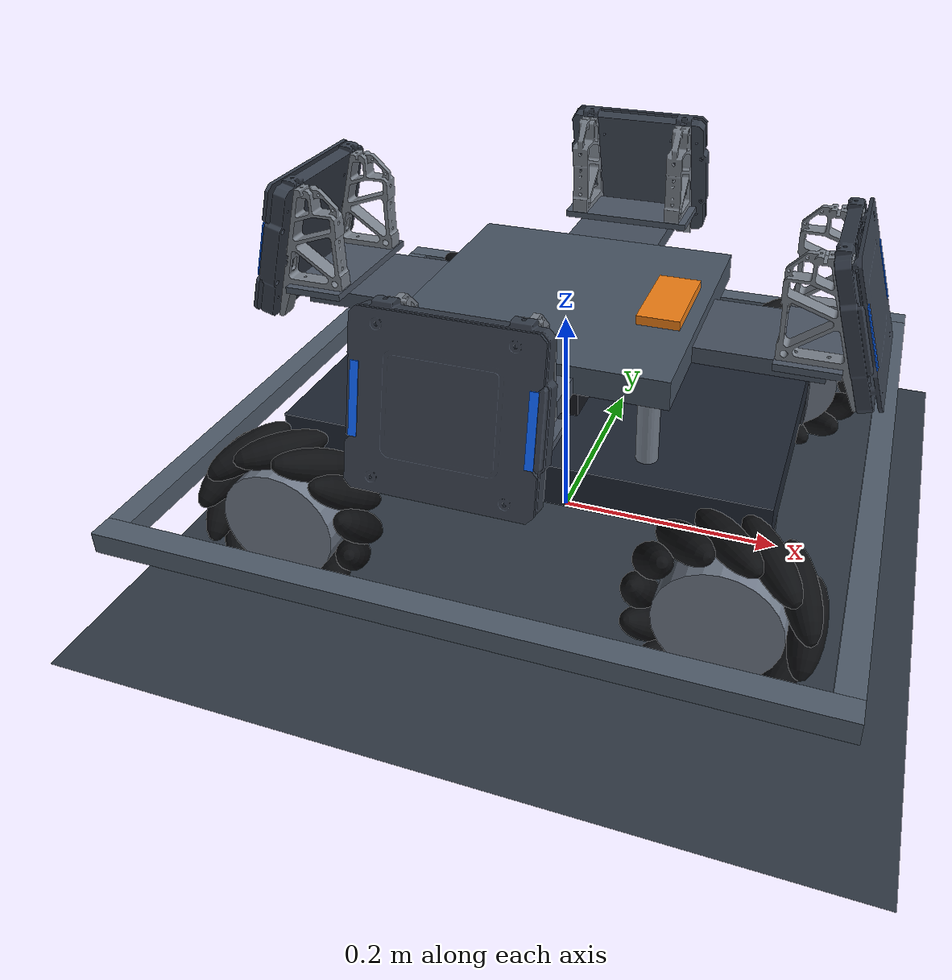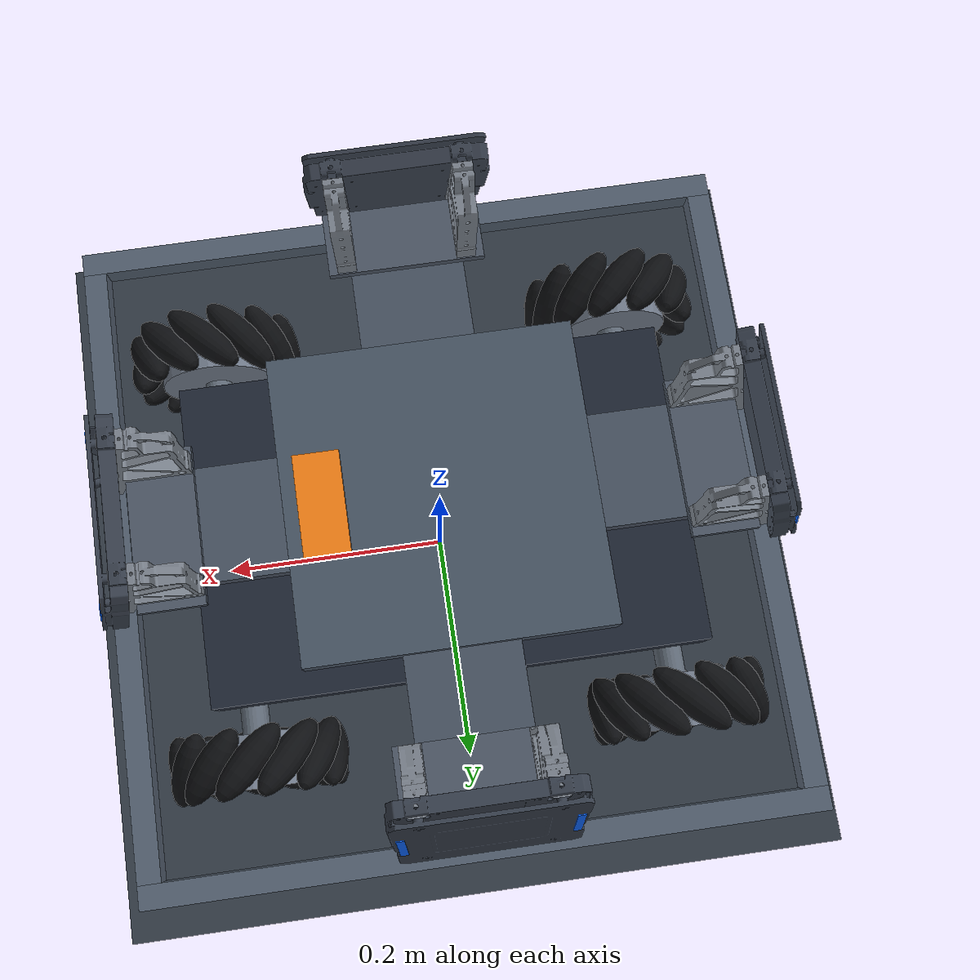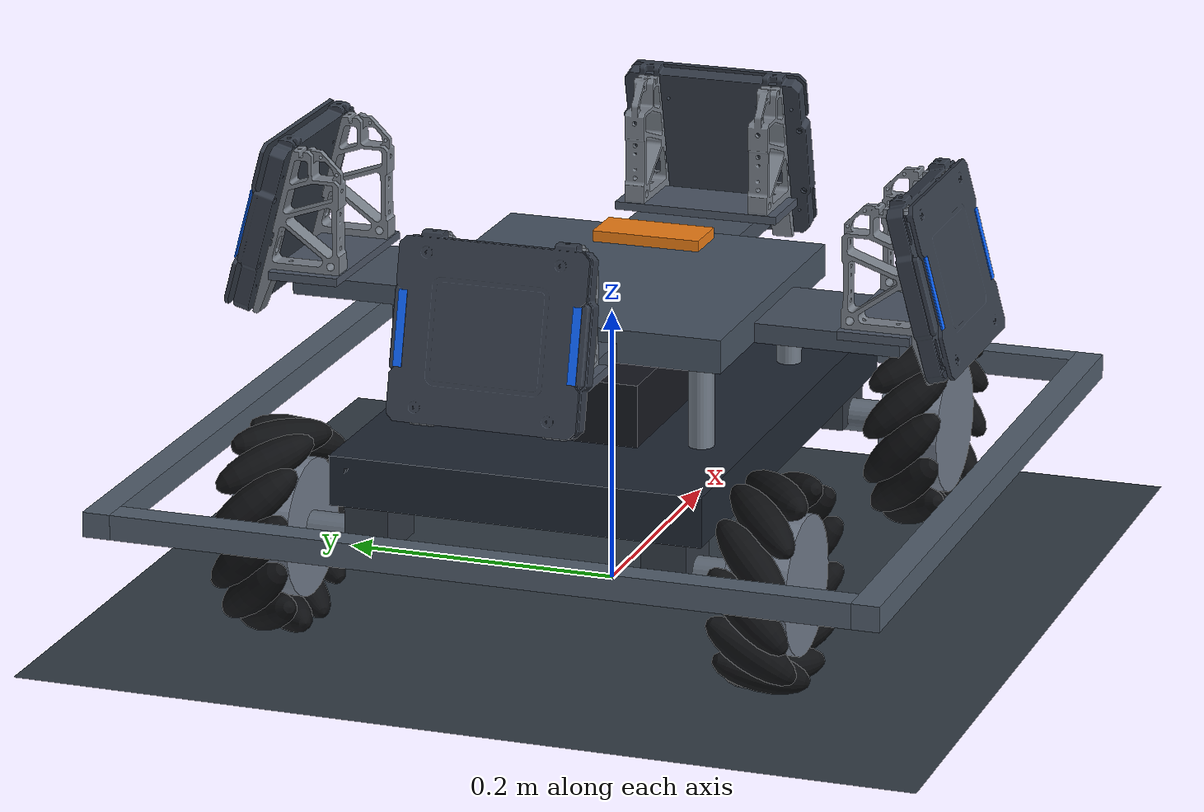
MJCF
<mujoco model="RoboMaster simplified infantry">
  <compiler angle="radian" meshdir="meshes" autolimits="true" />
  <option timestep="0.001" integrator="implicitfast" cone="elliptic" iterations="60" gravity="0 0 -9.81" />
  <default>
    <geom friction="1.0 0.002 0.0001" solref="0.008 1" solimp="0.95 0.99 0.001" condim="4" />
  </default>
  <visual>
    <global offwidth="1280" offheight="960" />
  </visual>
  <asset>
    <mesh name="armor_am02" file="armor_am02.obj" />
    <mesh name="armor_frame_a" file="armor_frame_a.obj" />
    <texture name="tiles" type="2d" builtin="checker" rgb1=".16 .19 .23" rgb2=".23 .27 .31" width="512" height="512" />
    <material name="floor" texture="tiles" texrepeat="12 12" reflectance=".1" />
  </asset>
  <worldbody>
    <light pos="1 -2 3" dir="-0.3 0.3 -1" diffuse=".9 .9 .9" ambient=".35 .35 .35" />
    <light pos="-2 1 2" dir="0 0 -1" diffuse=".5 .5 .5" />
    <geom name="ground" type="plane" size="6 6 .1" material="floor" contype="1" conaffinity="2" />
    <body name="chassis" pos="0 0 .08">
      <freejoint name="root" />
      <geom name="lower_deck" type="box" pos="0 0 .045" size=".205 .135 .018" mass="8" rgba=".12 .15 .2 1" contype="2" conaffinity="1" />
      <geom name="upper_deck" type="box" pos="0 0 .135" size=".12 .12 .012" mass="2" rgba=".28 .33 .39 1" contype="2" conaffinity="1" />
      <geom name="battery" type="box" pos="-.045 0 .085" size=".075 .06 .023" mass="2" rgba=".08 .09 .12 1" contype="0" conaffinity="0" />
      <geom name="front_marker" type="box" pos=".09 0 .151" size=".018 .04 .004" mass=".01" rgba=".95 .5 .08 1" contype="0" conaffinity="0" />
      <geom type="cylinder" pos="-0.1 -0.1 .09" size=".009 .035" mass=".08" rgba=".45 .49 .54 1" contype="0" conaffinity="0" />
      <geom type="cylinder" pos="-0.1 0.1 .09" size=".009 .035" mass=".08" rgba=".45 .49 .54 1" contype="0" conaffinity="0" />
      <geom type="cylinder" pos="0.1 -0.1 .09" size=".009 .035" mass=".08" rgba=".45 .49 .54 1" contype="0" conaffinity="0" />
      <geom type="cylinder" pos="0.1 0.1 .09" size=".009 .035" mass=".08" rgba=".45 .49 .54 1" contype="0" conaffinity="0" />
      <geom name="bumper_0_-1" type="box" pos="-0.275 0 0.022" size="0.01 0.265 0.009" mass=".25" rgba=".32 .37 .43 1" contype="2" conaffinity="1" />
      <geom name="bumper_0_1" type="box" pos="0.275 0 0.022" size="0.01 0.265 0.009" mass=".25" rgba=".32 .37 .43 1" contype="2" conaffinity="1" />
      <geom name="bumper_1_-1" type="box" pos="0 -0.275 0.022" size="0.285 0.01 0.009" mass=".25" rgba=".32 .37 .43 1" contype="2" conaffinity="1" />
      <geom name="bumper_1_1" type="box" pos="0 0.275 0.022" size="0.285 0.01 0.009" mass=".25" rgba=".32 .37 .43 1" contype="2" conaffinity="1" />
      <body name="armor_mount_front" pos="0.245 0.0 .175" euler="0 0 0">
        <body name="armor_front" euler="0 -0.2617993877991494 0">
          <inertial pos="0 0 0" mass=".359" diaginertia=".001 .0005 .0006" />
          <geom type="mesh" mesh="armor_am02" rgba=".21 .24 .29 1" contype="0" conaffinity="0" mass="0" />
          <geom name="armor_collision_front" type="box" size=".0095 .0705 .065" rgba="0 0 0 0" contype="2" conaffinity="1" mass="0" />
          <site name="armor_face_front" pos=".0095 0 0" size=".001" rgba="0 0 0 0" />
          <geom name="light_front_-1" type="box" pos=".0097 -0.062 0" size=".0005 .003 .026" rgba=".05 .4 1 1" contype="0" conaffinity="0" mass="0" />
          <geom name="light_front_1" type="box" pos=".0097 0.062 0" size=".0005 .003 .026" rgba=".05 .4 1 1" contype="0" conaffinity="0" mass="0" />
        </body>
        <geom type="mesh" mesh="armor_frame_a" pos="-.009176295 -0.0475 -.002458781" rgba=".48 .51 .55 1" contype="0" conaffinity="0" mass=".06" />
        <geom type="mesh" mesh="armor_frame_a" pos="-.009176295 0.0475 -.002458781" rgba=".48 .51 .55 1" contype="0" conaffinity="0" mass=".06" />
        <geom type="box" pos="-.09 0 -.045" size=".07 .045 .007" mass=".15" rgba=".28 .32 .38 1" contype="0" conaffinity="0" />
        <geom type="box" pos="-.034 0 -.034868407" size=".026 .062 .003" mass=".15" rgba=".3 .34 .4 1" contype="0" conaffinity="0" />
        <site name="m4_front_-0.044894086_-0.0475" pos="-0.044894086 -0.0475 -.031868407" size=".0021" rgba=".8 .8 .8 1" />
        <site name="m4_front_-0.044894086_0.0475" pos="-0.044894086 0.0475 -.031868407" size=".0021" rgba=".8 .8 .8 1" />
        <site name="m4_front_-0.019894086_-0.0475" pos="-0.019894086 -0.0475 -.031868407" size=".0021" rgba=".8 .8 .8 1" />
        <site name="m4_front_-0.019894086_0.0475" pos="-0.019894086 0.0475 -.031868407" size=".0021" rgba=".8 .8 .8 1" />
      </body>
      <body name="armor_mount_left" pos="1.5001923289555077e-17 0.245 .175" euler="0 0 1.5707963267948966">
        <body name="armor_left" euler="0 -0.2617993877991494 0">
          <inertial pos="0 0 0" mass=".359" diaginertia=".001 .0005 .0006" />
          <geom type="mesh" mesh="armor_am02" rgba=".21 .24 .29 1" contype="0" conaffinity="0" mass="0" />
          <geom name="armor_collision_left" type="box" size=".0095 .0705 .065" rgba="0 0 0 0" contype="2" conaffinity="1" mass="0" />
          <site name="armor_face_left" pos=".0095 0 0" size=".001" rgba="0 0 0 0" />
          <geom name="light_left_-1" type="box" pos=".0097 -0.062 0" size=".0005 .003 .026" rgba=".05 .4 1 1" contype="0" conaffinity="0" mass="0" />
          <geom name="light_left_1" type="box" pos=".0097 0.062 0" size=".0005 .003 .026" rgba=".05 .4 1 1" contype="0" conaffinity="0" mass="0" />
        </body>
        <geom type="mesh" mesh="armor_frame_a" pos="-.009176295 -0.0475 -.002458781" rgba=".48 .51 .55 1" contype="0" conaffinity="0" mass=".06" />
        <geom type="mesh" mesh="armor_frame_a" pos="-.009176295 0.0475 -.002458781" rgba=".48 .51 .55 1" contype="0" conaffinity="0" mass=".06" />
        <geom type="box" pos="-.09 0 -.045" size=".07 .045 .007" mass=".15" rgba=".28 .32 .38 1" contype="0" conaffinity="0" />
        <geom type="box" pos="-.034 0 -.034868407" size=".026 .062 .003" mass=".15" rgba=".3 .34 .4 1" contype="0" conaffinity="0" />
        <site name="m4_left_-0.044894086_-0.0475" pos="-0.044894086 -0.0475 -.031868407" size=".0021" rgba=".8 .8 .8 1" />
        <site name="m4_left_-0.044894086_0.0475" pos="-0.044894086 0.0475 -.031868407" size=".0021" rgba=".8 .8 .8 1" />
        <site name="m4_left_-0.019894086_-0.0475" pos="-0.019894086 -0.0475 -.031868407" size=".0021" rgba=".8 .8 .8 1" />
        <site name="m4_left_-0.019894086_0.0475" pos="-0.019894086 0.0475 -.031868407" size=".0021" rgba=".8 .8 .8 1" />
      </body>
      <body name="armor_mount_rear" pos="-0.245 3.0003846579110155e-17 .175" euler="0 0 3.141592653589793">
        <body name="armor_rear" euler="0 -0.2617993877991494 0">
          <inertial pos="0 0 0" mass=".359" diaginertia=".001 .0005 .0006" />
          <geom type="mesh" mesh="armor_am02" rgba=".21 .24 .29 1" contype="0" conaffinity="0" mass="0" />
          <geom name="armor_collision_rear" type="box" size=".0095 .0705 .065" rgba="0 0 0 0" contype="2" conaffinity="1" mass="0" />
          <site name="armor_face_rear" pos=".0095 0 0" size=".001" rgba="0 0 0 0" />
          <geom name="light_rear_-1" type="box" pos=".0097 -0.062 0" size=".0005 .003 .026" rgba=".05 .4 1 1" contype="0" conaffinity="0" mass="0" />
          <geom name="light_rear_1" type="box" pos=".0097 0.062 0" size=".0005 .003 .026" rgba=".05 .4 1 1" contype="0" conaffinity="0" mass="0" />
        </body>
        <geom type="mesh" mesh="armor_frame_a" pos="-.009176295 -0.0475 -.002458781" rgba=".48 .51 .55 1" contype="0" conaffinity="0" mass=".06" />
        <geom type="mesh" mesh="armor_frame_a" pos="-.009176295 0.0475 -.002458781" rgba=".48 .51 .55 1" contype="0" conaffinity="0" mass=".06" />
        <geom type="box" pos="-.09 0 -.045" size=".07 .045 .007" mass=".15" rgba=".28 .32 .38 1" contype="0" conaffinity="0" />
        <geom type="box" pos="-.034 0 -.034868407" size=".026 .062 .003" mass=".15" rgba=".3 .34 .4 1" contype="0" conaffinity="0" />
        <site name="m4_rear_-0.044894086_-0.0475" pos="-0.044894086 -0.0475 -.031868407" size=".0021" rgba=".8 .8 .8 1" />
        <site name="m4_rear_-0.044894086_0.0475" pos="-0.044894086 0.0475 -.031868407" size=".0021" rgba=".8 .8 .8 1" />
        <site name="m4_rear_-0.019894086_-0.0475" pos="-0.019894086 -0.0475 -.031868407" size=".0021" rgba=".8 .8 .8 1" />
        <site name="m4_rear_-0.019894086_0.0475" pos="-0.019894086 0.0475 -.031868407" size=".0021" rgba=".8 .8 .8 1" />
      </body>
      <body name="armor_mount_right" pos="1.5001923289555077e-17 -0.245 .175" euler="0 0 -1.5707963267948966">
        <body name="armor_right" euler="0 -0.2617993877991494 0">
          <inertial pos="0 0 0" mass=".359" diaginertia=".001 .0005 .0006" />
          <geom type="mesh" mesh="armor_am02" rgba=".21 .24 .29 1" contype="0" conaffinity="0" mass="0" />
          <geom name="armor_collision_right" type="box" size=".0095 .0705 .065" rgba="0 0 0 0" contype="2" conaffinity="1" mass="0" />
          <site name="armor_face_right" pos=".0095 0 0" size=".001" rgba="0 0 0 0" />
          <geom name="light_right_-1" type="box" pos=".0097 -0.062 0" size=".0005 .003 .026" rgba=".05 .4 1 1" contype="0" conaffinity="0" mass="0" />
          <geom name="light_right_1" type="box" pos=".0097 0.062 0" size=".0005 .003 .026" rgba=".05 .4 1 1" contype="0" conaffinity="0" mass="0" />
        </body>
        <geom type="mesh" mesh="armor_frame_a" pos="-.009176295 -0.0475 -.002458781" rgba=".48 .51 .55 1" contype="0" conaffinity="0" mass=".06" />
        <geom type="mesh" mesh="armor_frame_a" pos="-.009176295 0.0475 -.002458781" rgba=".48 .51 .55 1" contype="0" conaffinity="0" mass=".06" />
        <geom type="box" pos="-.09 0 -.045" size=".07 .045 .007" mass=".15" rgba=".28 .32 .38 1" contype="0" conaffinity="0" />
        <geom type="box" pos="-.034 0 -.034868407" size=".026 .062 .003" mass=".15" rgba=".3 .34 .4 1" contype="0" conaffinity="0" />
        <site name="m4_right_-0.044894086_-0.0475" pos="-0.044894086 -0.0475 -.031868407" size=".0021" rgba=".8 .8 .8 1" />
        <site name="m4_right_-0.044894086_0.0475" pos="-0.044894086 0.0475 -.031868407" size=".0021" rgba=".8 .8 .8 1" />
        <site name="m4_right_-0.019894086_-0.0475" pos="-0.019894086 -0.0475 -.031868407" size=".0021" rgba=".8 .8 .8 1" />
        <site name="m4_right_-0.019894086_0.0475" pos="-0.019894086 0.0475 -.031868407" size=".0021" rgba=".8 .8 .8 1" />
      </body>
      <geom type="cylinder" fromto="0.18 0.108 0 0.18 0.18 0" size=".012" mass=".12" rgba=".38 .42 .47 1" contype="0" conaffinity="0" />
      <geom type="box" pos="0.18 0.108 .025" size=".025 .016 .03" mass=".1" rgba=".2 .23 .27 1" contype="0" conaffinity="0" />
      <body name="wheel_fl" pos="0.18 0.18 0">
        <joint name="wheel_fl" type="hinge" axis="0 1 0" damping=".02" armature=".003" />
        <geom type="cylinder" size=".049 .022" quat=".70710678 .70710678 0 0" mass=".45" rgba=".45 .49 .55 1" contype="0" conaffinity="0" />
        <body name="roller_fl_0" pos="0.0 0 -0.062" zaxis="-1.0 1 -0.0">
          <joint name="roller_fl_0" type="hinge" axis="0 0 1" damping=".00002" armature=".000001" />
          <geom name="roller_geom_fl_0" type="ellipsoid" size=".014 .014 .038" mass=".025" rgba=".055 .06 .07 1" contype="2" conaffinity="1" />
        </body>
        <body name="roller_fl_1" pos="0.030999999999999996 0 -0.0536935750346352" zaxis="-0.8660254037844387 1 -0.49999999999999994">
          <joint name="roller_fl_1" type="hinge" axis="0 0 1" damping=".00002" armature=".000001" />
          <geom name="roller_geom_fl_1" type="ellipsoid" size=".014 .014 .038" mass=".025" rgba=".055 .06 .07 1" contype="2" conaffinity="1" />
        </body>
        <body name="roller_fl_2" pos="0.05369357503463519 0 -0.031000000000000007" zaxis="-0.5000000000000001 1 -0.8660254037844386">
          <joint name="roller_fl_2" type="hinge" axis="0 0 1" damping=".00002" armature=".000001" />
          <geom name="roller_geom_fl_2" type="ellipsoid" size=".014 .014 .038" mass=".025" rgba=".055 .06 .07 1" contype="2" conaffinity="1" />
        </body>
        <body name="roller_fl_3" pos="0.062 0 -3.796405077356795e-18" zaxis="-6.123233995736766e-17 1 -1.0">
          <joint name="roller_fl_3" type="hinge" axis="0 0 1" damping=".00002" armature=".000001" />
          <geom name="roller_geom_fl_3" type="ellipsoid" size=".014 .014 .038" mass=".025" rgba=".055 .06 .07 1" contype="2" conaffinity="1" />
        </body>
        <body name="roller_fl_4" pos="0.0536935750346352 0 0.030999999999999986" zaxis="0.4999999999999998 1 -0.8660254037844387">
          <joint name="roller_fl_4" type="hinge" axis="0 0 1" damping=".00002" armature=".000001" />
          <geom name="roller_geom_fl_4" type="ellipsoid" size=".014 .014 .038" mass=".025" rgba=".055 .06 .07 1" contype="2" conaffinity="1" />
        </body>
        <body name="roller_fl_5" pos="0.030999999999999996 0 0.0536935750346352" zaxis="0.8660254037844387 1 -0.49999999999999994">
          <joint name="roller_fl_5" type="hinge" axis="0 0 1" damping=".00002" armature=".000001" />
          <geom name="roller_geom_fl_5" type="ellipsoid" size=".014 .014 .038" mass=".025" rgba=".055 .06 .07 1" contype="2" conaffinity="1" />
        </body>
        <body name="roller_fl_6" pos="7.59281015471359e-18 0 0.062" zaxis="1.0 1 -1.2246467991473532e-16">
          <joint name="roller_fl_6" type="hinge" axis="0 0 1" damping=".00002" armature=".000001" />
          <geom name="roller_geom_fl_6" type="ellipsoid" size=".014 .014 .038" mass=".025" rgba=".055 .06 .07 1" contype="2" conaffinity="1" />
        </body>
        <body name="roller_fl_7" pos="-0.030999999999999982 0 0.053693575034635205" zaxis="0.8660254037844388 1 0.4999999999999997">
          <joint name="roller_fl_7" type="hinge" axis="0 0 1" damping=".00002" armature=".000001" />
          <geom name="roller_geom_fl_7" type="ellipsoid" size=".014 .014 .038" mass=".025" rgba=".055 .06 .07 1" contype="2" conaffinity="1" />
        </body>
        <body name="roller_fl_8" pos="-0.05369357503463518 0 0.031000000000000028" zaxis="0.5000000000000004 1 0.8660254037844384">
          <joint name="roller_fl_8" type="hinge" axis="0 0 1" damping=".00002" armature=".000001" />
          <geom name="roller_geom_fl_8" type="ellipsoid" size=".014 .014 .038" mass=".025" rgba=".055 .06 .07 1" contype="2" conaffinity="1" />
        </body>
        <body name="roller_fl_9" pos="-0.062 0 1.1389215232070384e-17" zaxis="1.8369701987210297e-16 1 1.0">
          <joint name="roller_fl_9" type="hinge" axis="0 0 1" damping=".00002" armature=".000001" />
          <geom name="roller_geom_fl_9" type="ellipsoid" size=".014 .014 .038" mass=".025" rgba=".055 .06 .07 1" contype="2" conaffinity="1" />
        </body>
        <body name="roller_fl_10" pos="-0.05369357503463519 0 -0.031000000000000007" zaxis="-0.5000000000000001 1 0.8660254037844386">
          <joint name="roller_fl_10" type="hinge" axis="0 0 1" damping=".00002" armature=".000001" />
          <geom name="roller_geom_fl_10" type="ellipsoid" size=".014 .014 .038" mass=".025" rgba=".055 .06 .07 1" contype="2" conaffinity="1" />
        </body>
        <body name="roller_fl_11" pos="-0.031000000000000028 0 -0.05369357503463518" zaxis="-0.8660254037844384 1 0.5000000000000004">
          <joint name="roller_fl_11" type="hinge" axis="0 0 1" damping=".00002" armature=".000001" />
          <geom name="roller_geom_fl_11" type="ellipsoid" size=".014 .014 .038" mass=".025" rgba=".055 .06 .07 1" contype="2" conaffinity="1" />
        </body>
      </body>
      <geom type="cylinder" fromto="0.18 -0.108 0 0.18 -0.18 0" size=".012" mass=".12" rgba=".38 .42 .47 1" contype="0" conaffinity="0" />
      <geom type="box" pos="0.18 -0.108 .025" size=".025 .016 .03" mass=".1" rgba=".2 .23 .27 1" contype="0" conaffinity="0" />
      <body name="wheel_fr" pos="0.18 -0.18 0">
        <joint name="wheel_fr" type="hinge" axis="0 1 0" damping=".02" armature=".003" />
        <geom type="cylinder" size=".049 .022" quat=".70710678 .70710678 0 0" mass=".45" rgba=".45 .49 .55 1" contype="0" conaffinity="0" />
        <body name="roller_fr_0" pos="0.0 0 -0.062" zaxis="1.0 1 0.0">
          <joint name="roller_fr_0" type="hinge" axis="0 0 1" damping=".00002" armature=".000001" />
          <geom name="roller_geom_fr_0" type="ellipsoid" size=".014 .014 .038" mass=".025" rgba=".055 .06 .07 1" contype="2" conaffinity="1" />
        </body>
        <body name="roller_fr_1" pos="0.030999999999999996 0 -0.0536935750346352" zaxis="0.8660254037844387 1 0.49999999999999994">
          <joint name="roller_fr_1" type="hinge" axis="0 0 1" damping=".00002" armature=".000001" />
          <geom name="roller_geom_fr_1" type="ellipsoid" size=".014 .014 .038" mass=".025" rgba=".055 .06 .07 1" contype="2" conaffinity="1" />
        </body>
        <body name="roller_fr_2" pos="0.05369357503463519 0 -0.031000000000000007" zaxis="0.5000000000000001 1 0.8660254037844386">
          <joint name="roller_fr_2" type="hinge" axis="0 0 1" damping=".00002" armature=".000001" />
          <geom name="roller_geom_fr_2" type="ellipsoid" size=".014 .014 .038" mass=".025" rgba=".055 .06 .07 1" contype="2" conaffinity="1" />
        </body>
        <body name="roller_fr_3" pos="0.062 0 -3.796405077356795e-18" zaxis="6.123233995736766e-17 1 1.0">
          <joint name="roller_fr_3" type="hinge" axis="0 0 1" damping=".00002" armature=".000001" />
          <geom name="roller_geom_fr_3" type="ellipsoid" size=".014 .014 .038" mass=".025" rgba=".055 .06 .07 1" contype="2" conaffinity="1" />
        </body>
        <body name="roller_fr_4" pos="0.0536935750346352 0 0.030999999999999986" zaxis="-0.4999999999999998 1 0.8660254037844387">
          <joint name="roller_fr_4" type="hinge" axis="0 0 1" damping=".00002" armature=".000001" />
          <geom name="roller_geom_fr_4" type="ellipsoid" size=".014 .014 .038" mass=".025" rgba=".055 .06 .07 1" contype="2" conaffinity="1" />
        </body>
        <body name="roller_fr_5" pos="0.030999999999999996 0 0.0536935750346352" zaxis="-0.8660254037844387 1 0.49999999999999994">
          <joint name="roller_fr_5" type="hinge" axis="0 0 1" damping=".00002" armature=".000001" />
          <geom name="roller_geom_fr_5" type="ellipsoid" size=".014 .014 .038" mass=".025" rgba=".055 .06 .07 1" contype="2" conaffinity="1" />
        </body>
        <body name="roller_fr_6" pos="7.59281015471359e-18 0 0.062" zaxis="-1.0 1 1.2246467991473532e-16">
          <joint name="roller_fr_6" type="hinge" axis="0 0 1" damping=".00002" armature=".000001" />
          <geom name="roller_geom_fr_6" type="ellipsoid" size=".014 .014 .038" mass=".025" rgba=".055 .06 .07 1" contype="2" conaffinity="1" />
        </body>
        <body name="roller_fr_7" pos="-0.030999999999999982 0 0.053693575034635205" zaxis="-0.8660254037844388 1 -0.4999999999999997">
          <joint name="roller_fr_7" type="hinge" axis="0 0 1" damping=".00002" armature=".000001" />
          <geom name="roller_geom_fr_7" type="ellipsoid" size=".014 .014 .038" mass=".025" rgba=".055 .06 .07 1" contype="2" conaffinity="1" />
        </body>
        <body name="roller_fr_8" pos="-0.05369357503463518 0 0.031000000000000028" zaxis="-0.5000000000000004 1 -0.8660254037844384">
          <joint name="roller_fr_8" type="hinge" axis="0 0 1" damping=".00002" armature=".000001" />
          <geom name="roller_geom_fr_8" type="ellipsoid" size=".014 .014 .038" mass=".025" rgba=".055 .06 .07 1" contype="2" conaffinity="1" />
        </body>
        <body name="roller_fr_9" pos="-0.062 0 1.1389215232070384e-17" zaxis="-1.8369701987210297e-16 1 -1.0">
          <joint name="roller_fr_9" type="hinge" axis="0 0 1" damping=".00002" armature=".000001" />
          <geom name="roller_geom_fr_9" type="ellipsoid" size=".014 .014 .038" mass=".025" rgba=".055 .06 .07 1" contype="2" conaffinity="1" />
        </body>
        <body name="roller_fr_10" pos="-0.05369357503463519 0 -0.031000000000000007" zaxis="0.5000000000000001 1 -0.8660254037844386">
          <joint name="roller_fr_10" type="hinge" axis="0 0 1" damping=".00002" armature=".000001" />
          <geom name="roller_geom_fr_10" type="ellipsoid" size=".014 .014 .038" mass=".025" rgba=".055 .06 .07 1" contype="2" conaffinity="1" />
        </body>
        <body name="roller_fr_11" pos="-0.031000000000000028 0 -0.05369357503463518" zaxis="0.8660254037844384 1 -0.5000000000000004">
          <joint name="roller_fr_11" type="hinge" axis="0 0 1" damping=".00002" armature=".000001" />
          <geom name="roller_geom_fr_11" type="ellipsoid" size=".014 .014 .038" mass=".025" rgba=".055 .06 .07 1" contype="2" conaffinity="1" />
        </body>
      </body>
      <geom type="cylinder" fromto="-0.18 0.108 0 -0.18 0.18 0" size=".012" mass=".12" rgba=".38 .42 .47 1" contype="0" conaffinity="0" />
      <geom type="box" pos="-0.18 0.108 .025" size=".025 .016 .03" mass=".1" rgba=".2 .23 .27 1" contype="0" conaffinity="0" />
      <body name="wheel_rl" pos="-0.18 0.18 0">
        <joint name="wheel_rl" type="hinge" axis="0 1 0" damping=".02" armature=".003" />
        <geom type="cylinder" size=".049 .022" quat=".70710678 .70710678 0 0" mass=".45" rgba=".45 .49 .55 1" contype="0" conaffinity="0" />
        <body name="roller_rl_0" pos="0.0 0 -0.062" zaxis="1.0 1 0.0">
          <joint name="roller_rl_0" type="hinge" axis="0 0 1" damping=".00002" armature=".000001" />
          <geom name="roller_geom_rl_0" type="ellipsoid" size=".014 .014 .038" mass=".025" rgba=".055 .06 .07 1" contype="2" conaffinity="1" />
        </body>
        <body name="roller_rl_1" pos="0.030999999999999996 0 -0.0536935750346352" zaxis="0.8660254037844387 1 0.49999999999999994">
          <joint name="roller_rl_1" type="hinge" axis="0 0 1" damping=".00002" armature=".000001" />
          <geom name="roller_geom_rl_1" type="ellipsoid" size=".014 .014 .038" mass=".025" rgba=".055 .06 .07 1" contype="2" conaffinity="1" />
        </body>
        <body name="roller_rl_2" pos="0.05369357503463519 0 -0.031000000000000007" zaxis="0.5000000000000001 1 0.8660254037844386">
          <joint name="roller_rl_2" type="hinge" axis="0 0 1" damping=".00002" armature=".000001" />
          <geom name="roller_geom_rl_2" type="ellipsoid" size=".014 .014 .038" mass=".025" rgba=".055 .06 .07 1" contype="2" conaffinity="1" />
        </body>
        <body name="roller_rl_3" pos="0.062 0 -3.796405077356795e-18" zaxis="6.123233995736766e-17 1 1.0">
          <joint name="roller_rl_3" type="hinge" axis="0 0 1" damping=".00002" armature=".000001" />
          <geom name="roller_geom_rl_3" type="ellipsoid" size=".014 .014 .038" mass=".025" rgba=".055 .06 .07 1" contype="2" conaffinity="1" />
        </body>
        <body name="roller_rl_4" pos="0.0536935750346352 0 0.030999999999999986" zaxis="-0.4999999999999998 1 0.8660254037844387">
          <joint name="roller_rl_4" type="hinge" axis="0 0 1" damping=".00002" armature=".000001" />
          <geom name="roller_geom_rl_4" type="ellipsoid" size=".014 .014 .038" mass=".025" rgba=".055 .06 .07 1" contype="2" conaffinity="1" />
        </body>
        <body name="roller_rl_5" pos="0.030999999999999996 0 0.0536935750346352" zaxis="-0.8660254037844387 1 0.49999999999999994">
          <joint name="roller_rl_5" type="hinge" axis="0 0 1" damping=".00002" armature=".000001" />
          <geom name="roller_geom_rl_5" type="ellipsoid" size=".014 .014 .038" mass=".025" rgba=".055 .06 .07 1" contype="2" conaffinity="1" />
        </body>
        <body name="roller_rl_6" pos="7.59281015471359e-18 0 0.062" zaxis="-1.0 1 1.2246467991473532e-16">
          <joint name="roller_rl_6" type="hinge" axis="0 0 1" damping=".00002" armature=".000001" />
          <geom name="roller_geom_rl_6" type="ellipsoid" size=".014 .014 .038" mass=".025" rgba=".055 .06 .07 1" contype="2" conaffinity="1" />
        </body>
        <body name="roller_rl_7" pos="-0.030999999999999982 0 0.053693575034635205" zaxis="-0.8660254037844388 1 -0.4999999999999997">
          <joint name="roller_rl_7" type="hinge" axis="0 0 1" damping=".00002" armature=".000001" />
          <geom name="roller_geom_rl_7" type="ellipsoid" size=".014 .014 .038" mass=".025" rgba=".055 .06 .07 1" contype="2" conaffinity="1" />
        </body>
        <body name="roller_rl_8" pos="-0.05369357503463518 0 0.031000000000000028" zaxis="-0.5000000000000004 1 -0.8660254037844384">
          <joint name="roller_rl_8" type="hinge" axis="0 0 1" damping=".00002" armature=".000001" />
          <geom name="roller_geom_rl_8" type="ellipsoid" size=".014 .014 .038" mass=".025" rgba=".055 .06 .07 1" contype="2" conaffinity="1" />
        </body>
        <body name="roller_rl_9" pos="-0.062 0 1.1389215232070384e-17" zaxis="-1.8369701987210297e-16 1 -1.0">
          <joint name="roller_rl_9" type="hinge" axis="0 0 1" damping=".00002" armature=".000001" />
          <geom name="roller_geom_rl_9" type="ellipsoid" size=".014 .014 .038" mass=".025" rgba=".055 .06 .07 1" contype="2" conaffinity="1" />
        </body>
        <body name="roller_rl_10" pos="-0.05369357503463519 0 -0.031000000000000007" zaxis="0.5000000000000001 1 -0.8660254037844386">
          <joint name="roller_rl_10" type="hinge" axis="0 0 1" damping=".00002" armature=".000001" />
          <geom name="roller_geom_rl_10" type="ellipsoid" size=".014 .014 .038" mass=".025" rgba=".055 .06 .07 1" contype="2" conaffinity="1" />
        </body>
        <body name="roller_rl_11" pos="-0.031000000000000028 0 -0.05369357503463518" zaxis="0.8660254037844384 1 -0.5000000000000004">
          <joint name="roller_rl_11" type="hinge" axis="0 0 1" damping=".00002" armature=".000001" />
          <geom name="roller_geom_rl_11" type="ellipsoid" size=".014 .014 .038" mass=".025" rgba=".055 .06 .07 1" contype="2" conaffinity="1" />
        </body>
      </body>
      <geom type="cylinder" fromto="-0.18 -0.108 0 -0.18 -0.18 0" size=".012" mass=".12" rgba=".38 .42 .47 1" contype="0" conaffinity="0" />
      <geom type="box" pos="-0.18 -0.108 .025" size=".025 .016 .03" mass=".1" rgba=".2 .23 .27 1" contype="0" conaffinity="0" />
      <body name="wheel_rr" pos="-0.18 -0.18 0">
        <joint name="wheel_rr" type="hinge" axis="0 1 0" damping=".02" armature=".003" />
        <geom type="cylinder" size=".049 .022" quat=".70710678 .70710678 0 0" mass=".45" rgba=".45 .49 .55 1" contype="0" conaffinity="0" />
        <body name="roller_rr_0" pos="0.0 0 -0.062" zaxis="-1.0 1 -0.0">
          <joint name="roller_rr_0" type="hinge" axis="0 0 1" damping=".00002" armature=".000001" />
          <geom name="roller_geom_rr_0" type="ellipsoid" size=".014 .014 .038" mass=".025" rgba=".055 .06 .07 1" contype="2" conaffinity="1" />
        </body>
        <body name="roller_rr_1" pos="0.030999999999999996 0 -0.0536935750346352" zaxis="-0.8660254037844387 1 -0.49999999999999994">
          <joint name="roller_rr_1" type="hinge" axis="0 0 1" damping=".00002" armature=".000001" />
          <geom name="roller_geom_rr_1" type="ellipsoid" size=".014 .014 .038" mass=".025" rgba=".055 .06 .07 1" contype="2" conaffinity="1" />
        </body>
        <body name="roller_rr_2" pos="0.05369357503463519 0 -0.031000000000000007" zaxis="-0.5000000000000001 1 -0.8660254037844386">
          <joint name="roller_rr_2" type="hinge" axis="0 0 1" damping=".00002" armature=".000001" />
          <geom name="roller_geom_rr_2" type="ellipsoid" size=".014 .014 .038" mass=".025" rgba=".055 .06 .07 1" contype="2" conaffinity="1" />
        </body>
        <body name="roller_rr_3" pos="0.062 0 -3.796405077356795e-18" zaxis="-6.123233995736766e-17 1 -1.0">
          <joint name="roller_rr_3" type="hinge" axis="0 0 1" damping=".00002" armature=".000001" />
          <geom name="roller_geom_rr_3" type="ellipsoid" size=".014 .014 .038" mass=".025" rgba=".055 .06 .07 1" contype="2" conaffinity="1" />
        </body>
        <body name="roller_rr_4" pos="0.0536935750346352 0 0.030999999999999986" zaxis="0.4999999999999998 1 -0.8660254037844387">
          <joint name="roller_rr_4" type="hinge" axis="0 0 1" damping=".00002" armature=".000001" />
          <geom name="roller_geom_rr_4" type="ellipsoid" size=".014 .014 .038" mass=".025" rgba=".055 .06 .07 1" contype="2" conaffinity="1" />
        </body>
        <body name="roller_rr_5" pos="0.030999999999999996 0 0.0536935750346352" zaxis="0.8660254037844387 1 -0.49999999999999994">
          <joint name="roller_rr_5" type="hinge" axis="0 0 1" damping=".00002" armature=".000001" />
          <geom name="roller_geom_rr_5" type="ellipsoid" size=".014 .014 .038" mass=".025" rgba=".055 .06 .07 1" contype="2" conaffinity="1" />
        </body>
        <body name="roller_rr_6" pos="7.59281015471359e-18 0 0.062" zaxis="1.0 1 -1.2246467991473532e-16">
          <joint name="roller_rr_6" type="hinge" axis="0 0 1" damping=".00002" armature=".000001" />
          <geom name="roller_geom_rr_6" type="ellipsoid" size=".014 .014 .038" mass=".025" rgba=".055 .06 .07 1" contype="2" conaffinity="1" />
        </body>
        <body name="roller_rr_7" pos="-0.030999999999999982 0 0.053693575034635205" zaxis="0.8660254037844388 1 0.4999999999999997">
          <joint name="roller_rr_7" type="hinge" axis="0 0 1" damping=".00002" armature=".000001" />
          <geom name="roller_geom_rr_7" type="ellipsoid" size=".014 .014 .038" mass=".025" rgba=".055 .06 .07 1" contype="2" conaffinity="1" />
        </body>
        <body name="roller_rr_8" pos="-0.05369357503463518 0 0.031000000000000028" zaxis="0.5000000000000004 1 0.8660254037844384">
          <joint name="roller_rr_8" type="hinge" axis="0 0 1" damping=".00002" armature=".000001" />
          <geom name="roller_geom_rr_8" type="ellipsoid" size=".014 .014 .038" mass=".025" rgba=".055 .06 .07 1" contype="2" conaffinity="1" />
        </body>
        <body name="roller_rr_9" pos="-0.062 0 1.1389215232070384e-17" zaxis="1.8369701987210297e-16 1 1.0">
          <joint name="roller_rr_9" type="hinge" axis="0 0 1" damping=".00002" armature=".000001" />
          <geom name="roller_geom_rr_9" type="ellipsoid" size=".014 .014 .038" mass=".025" rgba=".055 .06 .07 1" contype="2" conaffinity="1" />
        </body>
        <body name="roller_rr_10" pos="-0.05369357503463519 0 -0.031000000000000007" zaxis="-0.5000000000000001 1 0.8660254037844386">
          <joint name="roller_rr_10" type="hinge" axis="0 0 1" damping=".00002" armature=".000001" />
          <geom name="roller_geom_rr_10" type="ellipsoid" size=".014 .014 .038" mass=".025" rgba=".055 .06 .07 1" contype="2" conaffinity="1" />
        </body>
        <body name="roller_rr_11" pos="-0.031000000000000028 0 -0.05369357503463518" zaxis="-0.8660254037844384 1 0.5000000000000004">
          <joint name="roller_rr_11" type="hinge" axis="0 0 1" damping=".00002" armature=".000001" />
          <geom name="roller_geom_rr_11" type="ellipsoid" size=".014 .014 .038" mass=".025" rgba=".055 .06 .07 1" contype="2" conaffinity="1" />
        </body>
      </body>
    </body>
  </worldbody>
  <actuator>
    <velocity name="drive_fl" joint="wheel_fl" kv="2" ctrlrange="-35 35" forcerange="-5 5" />
    <velocity name="drive_fr" joint="wheel_fr" kv="2" ctrlrange="-35 35" forcerange="-5 5" />
    <velocity name="drive_rl" joint="wheel_rl" kv="2" ctrlrange="-35 35" forcerange="-5 5" />
    <velocity name="drive_rr" joint="wheel_rr" kv="2" ctrlrange="-35 35" forcerange="-5 5" />
  </actuator>
</mujoco>
